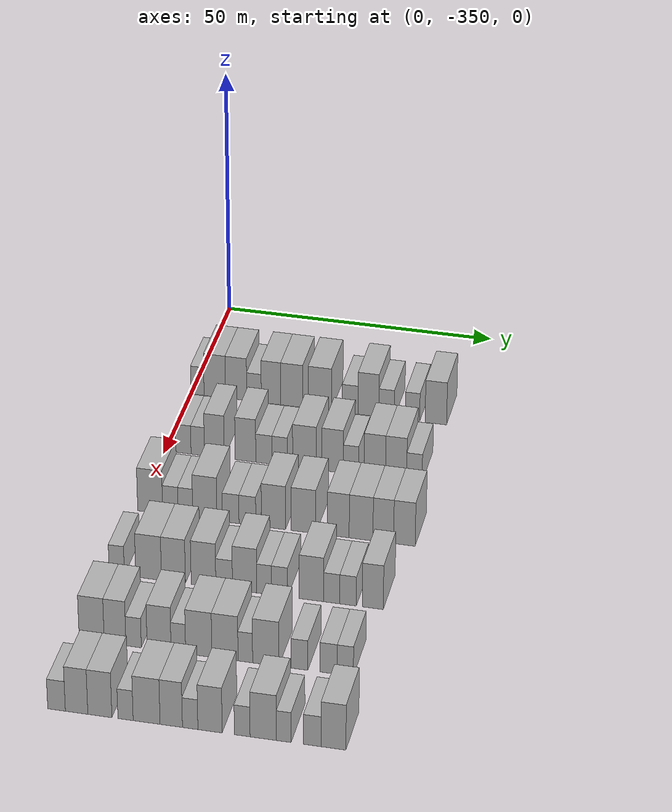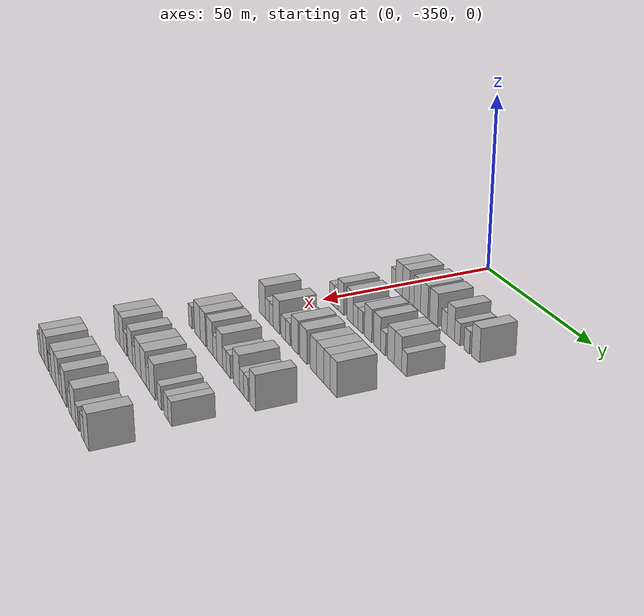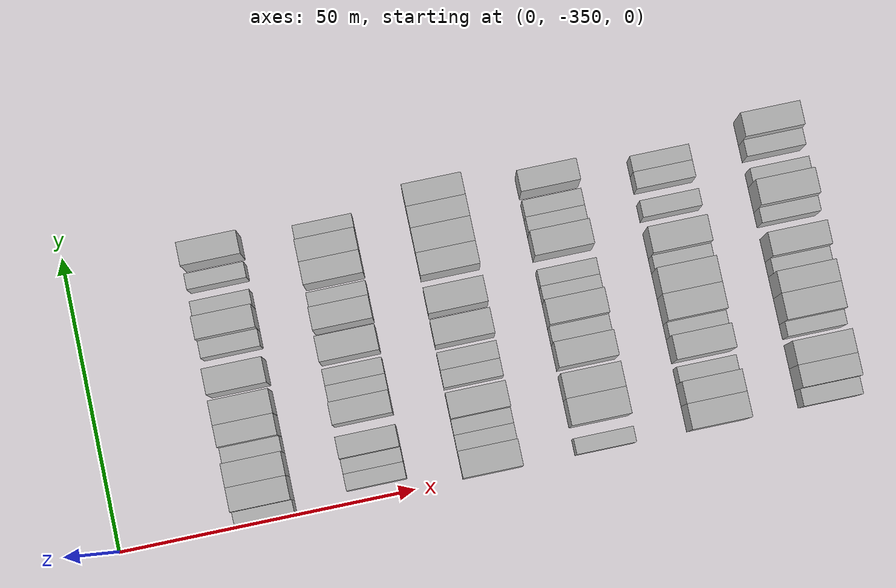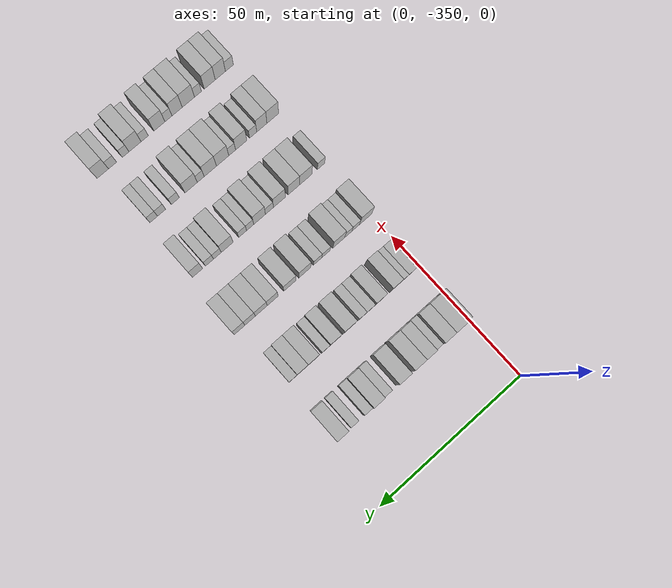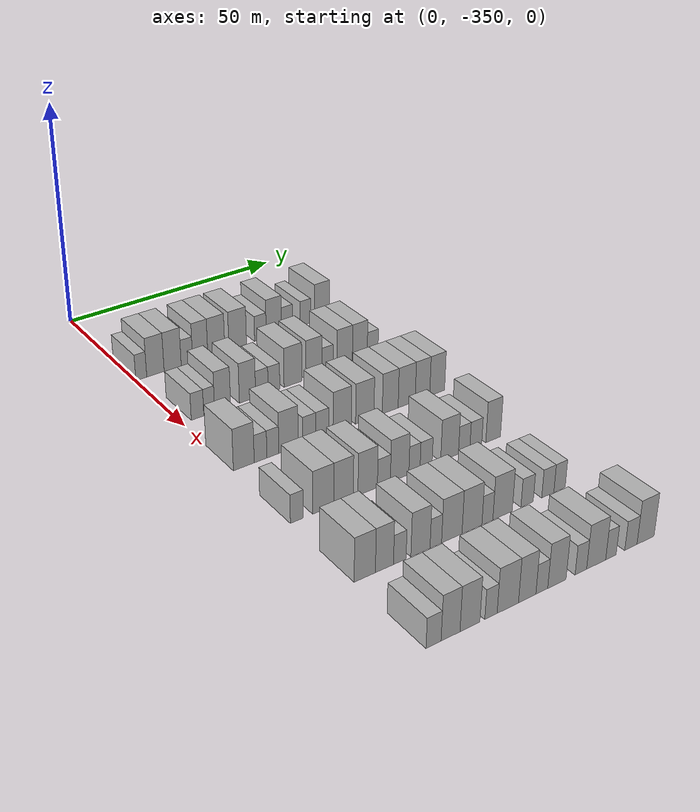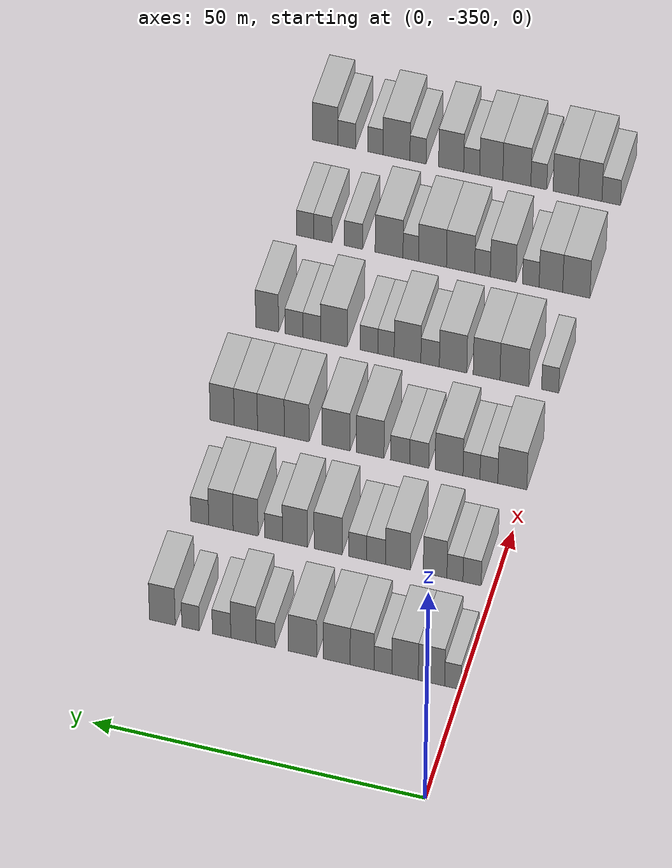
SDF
<sdf version="1.6">
 <world name="default">
  <model name="building_1">
   <static>1</static>
   <pose>25.0000 -348.7629 0 0.000000 0.000000 0.000000</pose>
   <link name="link">
    <pose>0 0 3.00 0 0 0</pose>
    <collision name="collision"><geometry><box><size>10.0000 2.4742 6.0000</size></box></geometry></collision>
    <visual name="visual">
     <cast_shadows>0</cast_shadows>
     <geometry><box><size>10.0000 2.4742 6.0000</size></box></geometry>
     <material>
      <script>
       <uri>model://HANNAS_wall/materials/scripts</uri>
       <uri>model://HANNAS_wall/materials/textures</uri>
       <name>vrc/HANNAS_wall</name>
      </script>
     </material>
    </visual>
   </link>
  </model>
  <model name="building_2">
   <static>1</static>
   <pose>25.0000 -345.5287 0 0.000000 0.000000 0.000000</pose>
   <link name="link">
    <pose>0 0 4.50 0 0 0</pose>
    <collision name="collision"><geometry><box><size>10.0000 3.9941 9.0000</size></box></geometry></collision>
    <visual name="visual">
     <cast_shadows>0</cast_shadows>
     <geometry><box><size>10.0000 3.9941 9.0000</size></box></geometry>
     <material>
      <script>
       <uri>model://HANNAS_wall/materials/scripts</uri>
       <uri>model://HANNAS_wall/materials/textures</uri>
       <name>vrc/HANNAS_wall</name>
      </script>
     </material>
    </visual>
   </link>
  </model>
  <model name="building_3">
   <static>1</static>
   <pose>25.0000 -341.5436 0 0.000000 0.000000 0.000000</pose>
   <link name="link">
    <pose>0 0 4.50 0 0 0</pose>
    <collision name="collision"><geometry><box><size>10.0000 3.9762 9.0000</size></box></geometry></collision>
    <visual name="visual">
     <cast_shadows>0</cast_shadows>
     <geometry><box><size>10.0000 3.9762 9.0000</size></box></geometry>
     <material>
      <script>
       <uri>model://HANNAS_wall/materials/scripts</uri>
       <uri>model://HANNAS_wall/materials/textures</uri>
       <name>vrc/HANNAS_wall</name>
      </script>
     </material>
    </visual>
   </link>
  </model>
  <model name="building_4">
   <static>1</static>
   <pose>25.0000 -338.1985 0 0.000000 0.000000 0.000000</pose>
   <link name="link">
    <pose>0 0 3.00 0 0 0</pose>
    <collision name="collision"><geometry><box><size>10.0000 2.7139 6.0000</size></box></geometry></collision>
    <visual name="visual">
     <cast_shadows>0</cast_shadows>
     <geometry><box><size>10.0000 2.7139 6.0000</size></box></geometry>
     <material>
      <script>
       <uri>model://HANNAS_wall/materials/scripts</uri>
       <uri>model://HANNAS_wall/materials/textures</uri>
       <name>vrc/HANNAS_wall</name>
      </script>
     </material>
    </visual>
   </link>
  </model>
  <model name="building_5">
   <static>1</static>
   <pose>25.0000 -335.0386 0 0.000000 0.000000 0.000000</pose>
   <link name="link">
    <pose>0 0 4.50 0 0 0</pose>
    <collision name="collision"><geometry><box><size>10.0000 3.6061 9.0000</size></box></geometry></collision>
    <visual name="visual">
     <cast_shadows>0</cast_shadows>
     <geometry><box><size>10.0000 3.6061 9.0000</size></box></geometry>
     <material>
      <script>
       <uri>model://HANNAS_wall/materials/scripts</uri>
       <uri>model://HANNAS_wall/materials/textures</uri>
       <name>vrc/HANNAS_wall</name>
      </script>
     </material>
    </visual>
   </link>
  </model>
  <model name="building_6">
   <static>1</static>
   <pose>25.0000 -331.1882 0 0.000000 0.000000 0.000000</pose>
   <link name="link">
    <pose>0 0 4.50 0 0 0</pose>
    <collision name="collision"><geometry><box><size>10.0000 4.0946 9.0000</size></box></geometry></collision>
    <visual name="visual">
     <cast_shadows>0</cast_shadows>
     <geometry><box><size>10.0000 4.0946 9.0000</size></box></geometry>
     <material>
      <script>
       <uri>model://HANNAS_wall/materials/scripts</uri>
       <uri>model://HANNAS_wall/materials/textures</uri>
       <name>vrc/HANNAS_wall</name>
      </script>
     </material>
    </visual>
   </link>
  </model>
  <model name="building_7">
   <static>1</static>
   <pose>25.0000 -325.9881 0 0.000000 0.000000 0.000000</pose>
   <link name="link">
    <pose>0 0 4.50 0 0 0</pose>
    <collision name="collision"><geometry><box><size>10.0000 4.3057 9.0000</size></box></geometry></collision>
    <visual name="visual">
     <cast_shadows>0</cast_shadows>
     <geometry><box><size>10.0000 4.3057 9.0000</size></box></geometry>
     <material>
      <script>
       <uri>model://HANNAS_wall/materials/scripts</uri>
       <uri>model://HANNAS_wall/materials/textures</uri>
       <name>vrc/HANNAS_wall</name>
      </script>
     </material>
    </visual>
   </link>
  </model>
  <model name="building_8">
   <static>1</static>
   <pose>25.0000 -320.3770 0 0.000000 0.000000 0.000000</pose>
   <link name="link">
    <pose>0 0 3.00 0 0 0</pose>
    <collision name="collision"><geometry><box><size>10.0000 2.9164 6.0000</size></box></geometry></collision>
    <visual name="visual">
     <cast_shadows>0</cast_shadows>
     <geometry><box><size>10.0000 2.9164 6.0000</size></box></geometry>
     <material>
      <script>
       <uri>model://HANNAS_wall/materials/scripts</uri>
       <uri>model://HANNAS_wall/materials/textures</uri>
       <name>vrc/HANNAS_wall</name>
      </script>
     </material>
    </visual>
   </link>
  </model>
  <model name="building_9">
   <static>1</static>
   <pose>25.0000 -316.9944 0 0.000000 0.000000 0.000000</pose>
   <link name="link">
    <pose>0 0 4.50 0 0 0</pose>
    <collision name="collision"><geometry><box><size>10.0000 3.8488 9.0000</size></box></geometry></collision>
    <visual name="visual">
     <cast_shadows>0</cast_shadows>
     <geometry><box><size>10.0000 3.8488 9.0000</size></box></geometry>
     <material>
      <script>
       <uri>model://HANNAS_wall/materials/scripts</uri>
       <uri>model://HANNAS_wall/materials/textures</uri>
       <name>vrc/HANNAS_wall</name>
      </script>
     </material>
    </visual>
   </link>
  </model>
  <model name="building_10">
   <static>1</static>
   <pose>25.0000 -313.6656 0 0.000000 0.000000 0.000000</pose>
   <link name="link">
    <pose>0 0 3.00 0 0 0</pose>
    <collision name="collision"><geometry><box><size>10.0000 2.8087 6.0000</size></box></geometry></collision>
    <visual name="visual">
     <cast_shadows>0</cast_shadows>
     <geometry><box><size>10.0000 2.8087 6.0000</size></box></geometry>
     <material>
      <script>
       <uri>model://HANNAS_wall/materials/scripts</uri>
       <uri>model://HANNAS_wall/materials/textures</uri>
       <name>vrc/HANNAS_wall</name>
      </script>
     </material>
    </visual>
   </link>
  </model>
  <model name="building_11">
   <static>1</static>
   <pose>25.0000 -308.9259 0 0.000000 0.000000 0.000000</pose>
   <link name="link">
    <pose>0 0 3.00 0 0 0</pose>
    <collision name="collision"><geometry><box><size>10.0000 2.6708 6.0000</size></box></geometry></collision>
    <visual name="visual">
     <cast_shadows>0</cast_shadows>
     <geometry><box><size>10.0000 2.6708 6.0000</size></box></geometry>
     <material>
      <script>
       <uri>model://HANNAS_wall/materials/scripts</uri>
       <uri>model://HANNAS_wall/materials/textures</uri>
       <name>vrc/HANNAS_wall</name>
      </script>
     </material>
    </visual>
   </link>
  </model>
  <model name="building_12">
   <static>1</static>
   <pose>25.0000 -304.6251 0 0.000000 0.000000 0.000000</pose>
   <link name="link">
    <pose>0 0 4.50 0 0 0</pose>
    <collision name="collision"><geometry><box><size>10.0000 3.9308 9.0000</size></box></geometry></collision>
    <visual name="visual">
     <cast_shadows>0</cast_shadows>
     <geometry><box><size>10.0000 3.9308 9.0000</size></box></geometry>
     <material>
      <script>
       <uri>model://HANNAS_wall/materials/scripts</uri>
       <uri>model://HANNAS_wall/materials/textures</uri>
       <name>vrc/HANNAS_wall</name>
      </script>
     </material>
    </visual>
   </link>
  </model>
  <model name="building_169">
   <static>1</static>
   <pose>44.0000 -346.6070 0 0.000000 0.000000 0.000000</pose>
   <link name="link">
    <pose>0 0 3.00 0 0 0</pose>
    <collision name="collision"><geometry><box><size>10.0000 2.7861 6.0000</size></box></geometry></collision>
    <visual name="visual">
     <cast_shadows>0</cast_shadows>
     <geometry><box><size>10.0000 2.7861 6.0000</size></box></geometry>
     <material>
      <script>
       <uri>model://HANNAS_wall/materials/scripts</uri>
       <uri>model://HANNAS_wall/materials/textures</uri>
       <name>vrc/HANNAS_wall</name>
      </script>
     </material>
    </visual>
   </link>
  </model>
  <model name="building_170">
   <static>1</static>
   <pose>44.0000 -343.9913 0 0.000000 0.000000 0.000000</pose>
   <link name="link">
    <pose>0 0 3.00 0 0 0</pose>
    <collision name="collision"><geometry><box><size>10.0000 2.4452 6.0000</size></box></geometry></collision>
    <visual name="visual">
     <cast_shadows>0</cast_shadows>
     <geometry><box><size>10.0000 2.4452 6.0000</size></box></geometry>
     <material>
      <script>
       <uri>model://HANNAS_wall/materials/scripts</uri>
       <uri>model://HANNAS_wall/materials/textures</uri>
       <name>vrc/HANNAS_wall</name>
      </script>
     </material>
    </visual>
   </link>
  </model>
  <model name="building_171">
   <static>1</static>
   <pose>44.0000 -340.9624 0 0.000000 0.000000 0.000000</pose>
   <link name="link">
    <pose>0 0 4.50 0 0 0</pose>
    <collision name="collision"><geometry><box><size>10.0000 3.6128 9.0000</size></box></geometry></collision>
    <visual name="visual">
     <cast_shadows>0</cast_shadows>
     <geometry><box><size>10.0000 3.6128 9.0000</size></box></geometry>
     <material>
      <script>
       <uri>model://HANNAS_wall/materials/scripts</uri>
       <uri>model://HANNAS_wall/materials/textures</uri>
       <name>vrc/HANNAS_wall</name>
      </script>
     </material>
    </visual>
   </link>
  </model>
  <model name="building_172">
   <static>1</static>
   <pose>44.0000 -335.2778 0 0.000000 0.000000 0.000000</pose>
   <link name="link">
    <pose>0 0 4.50 0 0 0</pose>
    <collision name="collision"><geometry><box><size>10.0000 3.7563 9.0000</size></box></geometry></collision>
    <visual name="visual">
     <cast_shadows>0</cast_shadows>
     <geometry><box><size>10.0000 3.7563 9.0000</size></box></geometry>
     <material>
      <script>
       <uri>model://HANNAS_wall/materials/scripts</uri>
       <uri>model://HANNAS_wall/materials/textures</uri>
       <name>vrc/HANNAS_wall</name>
      </script>
     </material>
    </visual>
   </link>
  </model>
  <model name="building_173">
   <static>1</static>
   <pose>44.0000 -331.9364 0 0.000000 0.000000 0.000000</pose>
   <link name="link">
    <pose>0 0 3.00 0 0 0</pose>
    <collision name="collision"><geometry><box><size>10.0000 2.9266 6.0000</size></box></geometry></collision>
    <visual name="visual">
     <cast_shadows>0</cast_shadows>
     <geometry><box><size>10.0000 2.9266 6.0000</size></box></geometry>
     <material>
      <script>
       <uri>model://HANNAS_wall/materials/scripts</uri>
       <uri>model://HANNAS_wall/materials/textures</uri>
       <name>vrc/HANNAS_wall</name>
      </script>
     </material>
    </visual>
   </link>
  </model>
  <model name="building_174">
   <static>1</static>
   <pose>44.0000 -329.0938 0 0.000000 0.000000 0.000000</pose>
   <link name="link">
    <pose>0 0 3.00 0 0 0</pose>
    <collision name="collision"><geometry><box><size>10.0000 2.7586 6.0000</size></box></geometry></collision>
    <visual name="visual">
     <cast_shadows>0</cast_shadows>
     <geometry><box><size>10.0000 2.7586 6.0000</size></box></geometry>
     <material>
      <script>
       <uri>model://HANNAS_wall/materials/scripts</uri>
       <uri>model://HANNAS_wall/materials/textures</uri>
       <name>vrc/HANNAS_wall</name>
      </script>
     </material>
    </visual>
   </link>
  </model>
  <model name="building_175">
   <static>1</static>
   <pose>44.0000 -324.5658 0 0.000000 0.000000 0.000000</pose>
   <link name="link">
    <pose>0 0 4.50 0 0 0</pose>
    <collision name="collision"><geometry><box><size>10.0000 4.2974 9.0000</size></box></geometry></collision>
    <visual name="visual">
     <cast_shadows>0</cast_shadows>
     <geometry><box><size>10.0000 4.2974 9.0000</size></box></geometry>
     <material>
      <script>
       <uri>model://HANNAS_wall/materials/scripts</uri>
       <uri>model://HANNAS_wall/materials/textures</uri>
       <name>vrc/HANNAS_wall</name>
      </script>
     </material>
    </visual>
   </link>
  </model>
  <model name="building_176">
   <static>1</static>
   <pose>44.0000 -319.4846 0 0.000000 0.000000 0.000000</pose>
   <link name="link">
    <pose>0 0 4.50 0 0 0</pose>
    <collision name="collision"><geometry><box><size>10.0000 3.8649 9.0000</size></box></geometry></collision>
    <visual name="visual">
     <cast_shadows>0</cast_shadows>
     <geometry><box><size>10.0000 3.8649 9.0000</size></box></geometry>
     <material>
      <script>
       <uri>model://HANNAS_wall/materials/scripts</uri>
       <uri>model://HANNAS_wall/materials/textures</uri>
       <name>vrc/HANNAS_wall</name>
      </script>
     </material>
    </visual>
   </link>
  </model>
  <model name="building_177">
   <static>1</static>
   <pose>44.0000 -316.1811 0 0.000000 0.000000 0.000000</pose>
   <link name="link">
    <pose>0 0 3.00 0 0 0</pose>
    <collision name="collision"><geometry><box><size>10.0000 2.7421 6.0000</size></box></geometry></collision>
    <visual name="visual">
     <cast_shadows>0</cast_shadows>
     <geometry><box><size>10.0000 2.7421 6.0000</size></box></geometry>
     <material>
      <script>
       <uri>model://HANNAS_wall/materials/scripts</uri>
       <uri>model://HANNAS_wall/materials/textures</uri>
       <name>vrc/HANNAS_wall</name>
      </script>
     </material>
    </visual>
   </link>
  </model>
  <model name="building_178">
   <static>1</static>
   <pose>44.0000 -311.8851 0 0.000000 0.000000 0.000000</pose>
   <link name="link">
    <pose>0 0 4.50 0 0 0</pose>
    <collision name="collision"><geometry><box><size>10.0000 3.8500 9.0000</size></box></geometry></collision>
    <visual name="visual">
     <cast_shadows>0</cast_shadows>
     <geometry><box><size>10.0000 3.8500 9.0000</size></box></geometry>
     <material>
      <script>
       <uri>model://HANNAS_wall/materials/scripts</uri>
       <uri>model://HANNAS_wall/materials/textures</uri>
       <name>vrc/HANNAS_wall</name>
      </script>
     </material>
    </visual>
   </link>
  </model>
  <model name="building_179">
   <static>1</static>
   <pose>44.0000 -308.0728 0 0.000000 0.000000 0.000000</pose>
   <link name="link">
    <pose>0 0 4.50 0 0 0</pose>
    <collision name="collision"><geometry><box><size>10.0000 3.7745 9.0000</size></box></geometry></collision>
    <visual name="visual">
     <cast_shadows>0</cast_shadows>
     <geometry><box><size>10.0000 3.7745 9.0000</size></box></geometry>
     <material>
      <script>
       <uri>model://HANNAS_wall/materials/scripts</uri>
       <uri>model://HANNAS_wall/materials/textures</uri>
       <name>vrc/HANNAS_wall</name>
      </script>
     </material>
    </visual>
   </link>
  </model>
  <model name="building_180">
   <static>1</static>
   <pose>44.0000 -304.8033 0 0.000000 0.000000 0.000000</pose>
   <link name="link">
    <pose>0 0 3.00 0 0 0</pose>
    <collision name="collision"><geometry><box><size>10.0000 2.7644 6.0000</size></box></geometry></collision>
    <visual name="visual">
     <cast_shadows>0</cast_shadows>
     <geometry><box><size>10.0000 2.7644 6.0000</size></box></geometry>
     <material>
      <script>
       <uri>model://HANNAS_wall/materials/scripts</uri>
       <uri>model://HANNAS_wall/materials/textures</uri>
       <name>vrc/HANNAS_wall</name>
      </script>
     </material>
    </visual>
   </link>
  </model>
  <model name="building_331">
   <static>1</static>
   <pose>63.0000 -347.7648 0 0.000000 0.000000 0.000000</pose>
   <link name="link">
    <pose>0 0 4.50 0 0 0</pose>
    <collision name="collision"><geometry><box><size>10.0000 4.4703 9.0000</size></box></geometry></collision>
    <visual name="visual">
     <cast_shadows>0</cast_shadows>
     <geometry><box><size>10.0000 4.4703 9.0000</size></box></geometry>
     <material>
      <script>
       <uri>model://HANNAS_wall/materials/scripts</uri>
       <uri>model://HANNAS_wall/materials/textures</uri>
       <name>vrc/HANNAS_wall</name>
      </script>
     </material>
    </visual>
   </link>
  </model>
  <model name="building_332">
   <static>1</static>
   <pose>63.0000 -344.1526 0 0.000000 0.000000 0.000000</pose>
   <link name="link">
    <pose>0 0 3.00 0 0 0</pose>
    <collision name="collision"><geometry><box><size>10.0000 2.7542 6.0000</size></box></geometry></collision>
    <visual name="visual">
     <cast_shadows>0</cast_shadows>
     <geometry><box><size>10.0000 2.7542 6.0000</size></box></geometry>
     <material>
      <script>
       <uri>model://HANNAS_wall/materials/scripts</uri>
       <uri>model://HANNAS_wall/materials/textures</uri>
       <name>vrc/HANNAS_wall</name>
      </script>
     </material>
    </visual>
   </link>
  </model>
  <model name="building_333">
   <static>1</static>
   <pose>63.0000 -341.4654 0 0.000000 0.000000 0.000000</pose>
   <link name="link">
    <pose>0 0 3.00 0 0 0</pose>
    <collision name="collision"><geometry><box><size>10.0000 2.6201 6.0000</size></box></geometry></collision>
    <visual name="visual">
     <cast_shadows>0</cast_shadows>
     <geometry><box><size>10.0000 2.6201 6.0000</size></box></geometry>
     <material>
      <script>
       <uri>model://HANNAS_wall/materials/scripts</uri>
       <uri>model://HANNAS_wall/materials/textures</uri>
       <name>vrc/HANNAS_wall</name>
      </script>
     </material>
    </visual>
   </link>
  </model>
  <model name="building_334">
   <static>1</static>
   <pose>63.0000 -338.0038 0 0.000000 0.000000 0.000000</pose>
   <link name="link">
    <pose>0 0 4.50 0 0 0</pose>
    <collision name="collision"><geometry><box><size>10.0000 4.3030 9.0000</size></box></geometry></collision>
    <visual name="visual">
     <cast_shadows>0</cast_shadows>
     <geometry><box><size>10.0000 4.3030 9.0000</size></box></geometry>
     <material>
      <script>
       <uri>model://HANNAS_wall/materials/scripts</uri>
       <uri>model://HANNAS_wall/materials/textures</uri>
       <name>vrc/HANNAS_wall</name>
      </script>
     </material>
    </visual>
   </link>
  </model>
  <model name="building_335">
   <static>1</static>
   <pose>63.0000 -333.3852 0 0.000000 0.000000 0.000000</pose>
   <link name="link">
    <pose>0 0 3.00 0 0 0</pose>
    <collision name="collision"><geometry><box><size>10.0000 2.9342 6.0000</size></box></geometry></collision>
    <visual name="visual">
     <cast_shadows>0</cast_shadows>
     <geometry><box><size>10.0000 2.9342 6.0000</size></box></geometry>
     <material>
      <script>
       <uri>model://HANNAS_wall/materials/scripts</uri>
       <uri>model://HANNAS_wall/materials/textures</uri>
       <name>vrc/HANNAS_wall</name>
      </script>
     </material>
    </visual>
   </link>
  </model>
  <model name="building_336">
   <static>1</static>
   <pose>63.0000 -330.4274 0 0.000000 0.000000 0.000000</pose>
   <link name="link">
    <pose>0 0 3.00 0 0 0</pose>
    <collision name="collision"><geometry><box><size>10.0000 2.9812 6.0000</size></box></geometry></collision>
    <visual name="visual">
     <cast_shadows>0</cast_shadows>
     <geometry><box><size>10.0000 2.9812 6.0000</size></box></geometry>
     <material>
      <script>
       <uri>model://HANNAS_wall/materials/scripts</uri>
       <uri>model://HANNAS_wall/materials/textures</uri>
       <name>vrc/HANNAS_wall</name>
      </script>
     </material>
    </visual>
   </link>
  </model>
  <model name="building_337">
   <static>1</static>
   <pose>63.0000 -325.8070 0 0.000000 0.000000 0.000000</pose>
   <link name="link">
    <pose>0 0 4.50 0 0 0</pose>
    <collision name="collision"><geometry><box><size>10.0000 4.2597 9.0000</size></box></geometry></collision>
    <visual name="visual">
     <cast_shadows>0</cast_shadows>
     <geometry><box><size>10.0000 4.2597 9.0000</size></box></geometry>
     <material>
      <script>
       <uri>model://HANNAS_wall/materials/scripts</uri>
       <uri>model://HANNAS_wall/materials/textures</uri>
       <name>vrc/HANNAS_wall</name>
      </script>
     </material>
    </visual>
   </link>
  </model>
  <model name="building_338">
   <static>1</static>
   <pose>63.0000 -320.4951 0 0.000000 0.000000 0.000000</pose>
   <link name="link">
    <pose>0 0 4.50 0 0 0</pose>
    <collision name="collision"><geometry><box><size>10.0000 4.3640 9.0000</size></box></geometry></collision>
    <visual name="visual">
     <cast_shadows>0</cast_shadows>
     <geometry><box><size>10.0000 4.3640 9.0000</size></box></geometry>
     <material>
      <script>
       <uri>model://HANNAS_wall/materials/scripts</uri>
       <uri>model://HANNAS_wall/materials/textures</uri>
       <name>vrc/HANNAS_wall</name>
      </script>
     </material>
    </visual>
   </link>
  </model>
  <model name="building_339">
   <static>1</static>
   <pose>63.0000 -314.3894 0 0.000000 0.000000 0.000000</pose>
   <link name="link">
    <pose>0 0 4.50 0 0 0</pose>
    <collision name="collision"><geometry><box><size>10.0000 3.8474 9.0000</size></box></geometry></collision>
    <visual name="visual">
     <cast_shadows>0</cast_shadows>
     <geometry><box><size>10.0000 3.8474 9.0000</size></box></geometry>
     <material>
      <script>
       <uri>model://HANNAS_wall/materials/scripts</uri>
       <uri>model://HANNAS_wall/materials/textures</uri>
       <name>vrc/HANNAS_wall</name>
      </script>
     </material>
    </visual>
   </link>
  </model>
  <model name="building_340">
   <static>1</static>
   <pose>63.0000 -310.3753 0 0.000000 0.000000 0.000000</pose>
   <link name="link">
    <pose>0 0 4.50 0 0 0</pose>
    <collision name="collision"><geometry><box><size>10.0000 4.1808 9.0000</size></box></geometry></collision>
    <visual name="visual">
     <cast_shadows>0</cast_shadows>
     <geometry><box><size>10.0000 4.1808 9.0000</size></box></geometry>
     <material>
      <script>
       <uri>model://HANNAS_wall/materials/scripts</uri>
       <uri>model://HANNAS_wall/materials/textures</uri>
       <name>vrc/HANNAS_wall</name>
      </script>
     </material>
    </visual>
   </link>
  </model>
  <model name="building_341">
   <static>1</static>
   <pose>63.0000 -306.4700 0 0.000000 0.000000 0.000000</pose>
   <link name="link">
    <pose>0 0 4.50 0 0 0</pose>
    <collision name="collision"><geometry><box><size>10.0000 3.6298 9.0000</size></box></geometry></collision>
    <visual name="visual">
     <cast_shadows>0</cast_shadows>
     <geometry><box><size>10.0000 3.6298 9.0000</size></box></geometry>
     <material>
      <script>
       <uri>model://HANNAS_wall/materials/scripts</uri>
       <uri>model://HANNAS_wall/materials/textures</uri>
       <name>vrc/HANNAS_wall</name>
      </script>
     </material>
    </visual>
   </link>
  </model>
  <model name="building_342">
   <static>1</static>
   <pose>63.0000 -302.7753 0 0.000000 0.000000 0.000000</pose>
   <link name="link">
    <pose>0 0 4.50 0 0 0</pose>
    <collision name="collision"><geometry><box><size>10.0000 3.7595 9.0000</size></box></geometry></collision>
    <visual name="visual">
     <cast_shadows>0</cast_shadows>
     <geometry><box><size>10.0000 3.7595 9.0000</size></box></geometry>
     <material>
      <script>
       <uri>model://HANNAS_wall/materials/scripts</uri>
       <uri>model://HANNAS_wall/materials/textures</uri>
       <name>vrc/HANNAS_wall</name>
      </script>
     </material>
    </visual>
   </link>
  </model>
  <model name="building_504">
   <static>1</static>
   <pose>82.0000 -348.6699 0 0.000000 0.000000 0.000000</pose>
   <link name="link">
    <pose>0 0 3.00 0 0 0</pose>
    <collision name="collision"><geometry><box><size>10.0000 2.6602 6.0000</size></box></geometry></collision>
    <visual name="visual">
     <cast_shadows>0</cast_shadows>
     <geometry><box><size>10.0000 2.6602 6.0000</size></box></geometry>
     <material>
      <script>
       <uri>model://HANNAS_wall/materials/scripts</uri>
       <uri>model://HANNAS_wall/materials/textures</uri>
       <name>vrc/HANNAS_wall</name>
      </script>
     </material>
    </visual>
   </link>
  </model>
  <model name="building_505">
   <static>1</static>
   <pose>82.0000 -343.0952 0 0.000000 0.000000 0.000000</pose>
   <link name="link">
    <pose>0 0 4.50 0 0 0</pose>
    <collision name="collision"><geometry><box><size>10.0000 4.4891 9.0000</size></box></geometry></collision>
    <visual name="visual">
     <cast_shadows>0</cast_shadows>
     <geometry><box><size>10.0000 4.4891 9.0000</size></box></geometry>
     <material>
      <script>
       <uri>model://HANNAS_wall/materials/scripts</uri>
       <uri>model://HANNAS_wall/materials/textures</uri>
       <name>vrc/HANNAS_wall</name>
      </script>
     </material>
    </visual>
   </link>
  </model>
  <model name="building_506">
   <static>1</static>
   <pose>82.0000 -338.7643 0 0.000000 0.000000 0.000000</pose>
   <link name="link">
    <pose>0 0 4.50 0 0 0</pose>
    <collision name="collision"><geometry><box><size>10.0000 4.1728 9.0000</size></box></geometry></collision>
    <visual name="visual">
     <cast_shadows>0</cast_shadows>
     <geometry><box><size>10.0000 4.1728 9.0000</size></box></geometry>
     <material>
      <script>
       <uri>model://HANNAS_wall/materials/scripts</uri>
       <uri>model://HANNAS_wall/materials/textures</uri>
       <name>vrc/HANNAS_wall</name>
      </script>
     </material>
    </visual>
   </link>
  </model>
  <model name="building_507">
   <static>1</static>
   <pose>82.0000 -333.5372 0 0.000000 0.000000 0.000000</pose>
   <link name="link">
    <pose>0 0 4.50 0 0 0</pose>
    <collision name="collision"><geometry><box><size>10.0000 4.2813 9.0000</size></box></geometry></collision>
    <visual name="visual">
     <cast_shadows>0</cast_shadows>
     <geometry><box><size>10.0000 4.2813 9.0000</size></box></geometry>
     <material>
      <script>
       <uri>model://HANNAS_wall/materials/scripts</uri>
       <uri>model://HANNAS_wall/materials/textures</uri>
       <name>vrc/HANNAS_wall</name>
      </script>
     </material>
    </visual>
   </link>
  </model>
  <model name="building_508">
   <static>1</static>
   <pose>82.0000 -329.9532 0 0.000000 0.000000 0.000000</pose>
   <link name="link">
    <pose>0 0 3.00 0 0 0</pose>
    <collision name="collision"><geometry><box><size>10.0000 2.8868 6.0000</size></box></geometry></collision>
    <visual name="visual">
     <cast_shadows>0</cast_shadows>
     <geometry><box><size>10.0000 2.8868 6.0000</size></box></geometry>
     <material>
      <script>
       <uri>model://HANNAS_wall/materials/scripts</uri>
       <uri>model://HANNAS_wall/materials/textures</uri>
       <name>vrc/HANNAS_wall</name>
      </script>
     </material>
    </visual>
   </link>
  </model>
  <model name="building_509">
   <static>1</static>
   <pose>82.0000 -326.4195 0 0.000000 0.000000 0.000000</pose>
   <link name="link">
    <pose>0 0 4.50 0 0 0</pose>
    <collision name="collision"><geometry><box><size>10.0000 4.1806 9.0000</size></box></geometry></collision>
    <visual name="visual">
     <cast_shadows>0</cast_shadows>
     <geometry><box><size>10.0000 4.1806 9.0000</size></box></geometry>
     <material>
      <script>
       <uri>model://HANNAS_wall/materials/scripts</uri>
       <uri>model://HANNAS_wall/materials/textures</uri>
       <name>vrc/HANNAS_wall</name>
      </script>
     </material>
    </visual>
   </link>
  </model>
  <model name="building_510">
   <static>1</static>
   <pose>82.0000 -323.0485 0 0.000000 0.000000 0.000000</pose>
   <link name="link">
    <pose>0 0 3.00 0 0 0</pose>
    <collision name="collision"><geometry><box><size>10.0000 2.5615 6.0000</size></box></geometry></collision>
    <visual name="visual">
     <cast_shadows>0</cast_shadows>
     <geometry><box><size>10.0000 2.5615 6.0000</size></box></geometry>
     <material>
      <script>
       <uri>model://HANNAS_wall/materials/scripts</uri>
       <uri>model://HANNAS_wall/materials/textures</uri>
       <name>vrc/HANNAS_wall</name>
      </script>
     </material>
    </visual>
   </link>
  </model>
  <model name="building_511">
   <static>1</static>
   <pose>82.0000 -320.3709 0 0.000000 0.000000 0.000000</pose>
   <link name="link">
    <pose>0 0 3.00 0 0 0</pose>
    <collision name="collision"><geometry><box><size>10.0000 2.7937 6.0000</size></box></geometry></collision>
    <visual name="visual">
     <cast_shadows>0</cast_shadows>
     <geometry><box><size>10.0000 2.7937 6.0000</size></box></geometry>
     <material>
      <script>
       <uri>model://HANNAS_wall/materials/scripts</uri>
       <uri>model://HANNAS_wall/materials/textures</uri>
       <name>vrc/HANNAS_wall</name>
      </script>
     </material>
    </visual>
   </link>
  </model>
  <model name="building_512">
   <static>1</static>
   <pose>82.0000 -314.8719 0 0.000000 0.000000 0.000000</pose>
   <link name="link">
    <pose>0 0 4.50 0 0 0</pose>
    <collision name="collision"><geometry><box><size>10.0000 4.2044 9.0000</size></box></geometry></collision>
    <visual name="visual">
     <cast_shadows>0</cast_shadows>
     <geometry><box><size>10.0000 4.2044 9.0000</size></box></geometry>
     <material>
      <script>
       <uri>model://HANNAS_wall/materials/scripts</uri>
       <uri>model://HANNAS_wall/materials/textures</uri>
       <name>vrc/HANNAS_wall</name>
      </script>
     </material>
    </visual>
   </link>
  </model>
  <model name="building_513">
   <static>1</static>
   <pose>82.0000 -311.4018 0 0.000000 0.000000 0.000000</pose>
   <link name="link">
    <pose>0 0 3.00 0 0 0</pose>
    <collision name="collision"><geometry><box><size>10.0000 2.7357 6.0000</size></box></geometry></collision>
    <visual name="visual">
     <cast_shadows>0</cast_shadows>
     <geometry><box><size>10.0000 2.7357 6.0000</size></box></geometry>
     <material>
      <script>
       <uri>model://HANNAS_wall/materials/scripts</uri>
       <uri>model://HANNAS_wall/materials/textures</uri>
       <name>vrc/HANNAS_wall</name>
      </script>
     </material>
    </visual>
   </link>
  </model>
  <model name="building_514">
   <static>1</static>
   <pose>82.0000 -308.6063 0 0.000000 0.000000 0.000000</pose>
   <link name="link">
    <pose>0 0 3.00 0 0 0</pose>
    <collision name="collision"><geometry><box><size>10.0000 2.8554 6.0000</size></box></geometry></collision>
    <visual name="visual">
     <cast_shadows>0</cast_shadows>
     <geometry><box><size>10.0000 2.8554 6.0000</size></box></geometry>
     <material>
      <script>
       <uri>model://HANNAS_wall/materials/scripts</uri>
       <uri>model://HANNAS_wall/materials/textures</uri>
       <name>vrc/HANNAS_wall</name>
      </script>
     </material>
    </visual>
   </link>
  </model>
  <model name="building_515">
   <static>1</static>
   <pose>82.0000 -304.3753 0 0.000000 0.000000 0.000000</pose>
   <link name="link">
    <pose>0 0 4.50 0 0 0</pose>
    <collision name="collision"><geometry><box><size>10.0000 3.6064 9.0000</size></box></geometry></collision>
    <visual name="visual">
     <cast_shadows>0</cast_shadows>
     <geometry><box><size>10.0000 3.6064 9.0000</size></box></geometry>
     <material>
      <script>
       <uri>model://HANNAS_wall/materials/scripts</uri>
       <uri>model://HANNAS_wall/materials/textures</uri>
       <name>vrc/HANNAS_wall</name>
      </script>
     </material>
    </visual>
   </link>
  </model>
  <model name="building_677">
   <static>1</static>
   <pose>101.0000 -347.8574 0 0.000000 0.000000 0.000000</pose>
   <link name="link">
    <pose>0 0 4.50 0 0 0</pose>
    <collision name="collision"><geometry><box><size>10.0000 4.2853 9.0000</size></box></geometry></collision>
    <visual name="visual">
     <cast_shadows>0</cast_shadows>
     <geometry><box><size>10.0000 4.2853 9.0000</size></box></geometry>
     <material>
      <script>
       <uri>model://HANNAS_wall/materials/scripts</uri>
       <uri>model://HANNAS_wall/materials/textures</uri>
       <name>vrc/HANNAS_wall</name>
      </script>
     </material>
    </visual>
   </link>
  </model>
  <model name="building_678">
   <static>1</static>
   <pose>101.0000 -343.8634 0 0.000000 0.000000 0.000000</pose>
   <link name="link">
    <pose>0 0 4.50 0 0 0</pose>
    <collision name="collision"><geometry><box><size>10.0000 3.7026 9.0000</size></box></geometry></collision>
    <visual name="visual">
     <cast_shadows>0</cast_shadows>
     <geometry><box><size>10.0000 3.7026 9.0000</size></box></geometry>
     <material>
      <script>
       <uri>model://HANNAS_wall/materials/scripts</uri>
       <uri>model://HANNAS_wall/materials/textures</uri>
       <name>vrc/HANNAS_wall</name>
      </script>
     </material>
    </visual>
   </link>
  </model>
  <model name="building_679">
   <static>1</static>
   <pose>101.0000 -340.7031 0 0.000000 0.000000 0.000000</pose>
   <link name="link">
    <pose>0 0 3.00 0 0 0</pose>
    <collision name="collision"><geometry><box><size>10.0000 2.6179 6.0000</size></box></geometry></collision>
    <visual name="visual">
     <cast_shadows>0</cast_shadows>
     <geometry><box><size>10.0000 2.6179 6.0000</size></box></geometry>
     <material>
      <script>
       <uri>model://HANNAS_wall/materials/scripts</uri>
       <uri>model://HANNAS_wall/materials/textures</uri>
       <name>vrc/HANNAS_wall</name>
      </script>
     </material>
    </visual>
   </link>
  </model>
  <model name="building_680">
   <static>1</static>
   <pose>101.0000 -336.3645 0 0.000000 0.000000 0.000000</pose>
   <link name="link">
    <pose>0 0 4.50 0 0 0</pose>
    <collision name="collision"><geometry><box><size>10.0000 4.0595 9.0000</size></box></geometry></collision>
    <visual name="visual">
     <cast_shadows>0</cast_shadows>
     <geometry><box><size>10.0000 4.0595 9.0000</size></box></geometry>
     <material>
      <script>
       <uri>model://HANNAS_wall/materials/scripts</uri>
       <uri>model://HANNAS_wall/materials/textures</uri>
       <name>vrc/HANNAS_wall</name>
      </script>
     </material>
    </visual>
   </link>
  </model>
  <model name="building_681">
   <static>1</static>
   <pose>101.0000 -333.0995 0 0.000000 0.000000 0.000000</pose>
   <link name="link">
    <pose>0 0 3.00 0 0 0</pose>
    <collision name="collision"><geometry><box><size>10.0000 2.4704 6.0000</size></box></geometry></collision>
    <visual name="visual">
     <cast_shadows>0</cast_shadows>
     <geometry><box><size>10.0000 2.4704 6.0000</size></box></geometry>
     <material>
      <script>
       <uri>model://HANNAS_wall/materials/scripts</uri>
       <uri>model://HANNAS_wall/materials/textures</uri>
       <name>vrc/HANNAS_wall</name>
      </script>
     </material>
    </visual>
   </link>
  </model>
  <model name="building_682">
   <static>1</static>
   <pose>101.0000 -329.6394 0 0.000000 0.000000 0.000000</pose>
   <link name="link">
    <pose>0 0 4.50 0 0 0</pose>
    <collision name="collision"><geometry><box><size>10.0000 4.4497 9.0000</size></box></geometry></collision>
    <visual name="visual">
     <cast_shadows>0</cast_shadows>
     <geometry><box><size>10.0000 4.4497 9.0000</size></box></geometry>
     <material>
      <script>
       <uri>model://HANNAS_wall/materials/scripts</uri>
       <uri>model://HANNAS_wall/materials/textures</uri>
       <name>vrc/HANNAS_wall</name>
      </script>
     </material>
    </visual>
   </link>
  </model>
  <model name="building_683">
   <static>1</static>
   <pose>101.0000 -325.2089 0 0.000000 0.000000 0.000000</pose>
   <link name="link">
    <pose>0 0 4.50 0 0 0</pose>
    <collision name="collision"><geometry><box><size>10.0000 4.4114 9.0000</size></box></geometry></collision>
    <visual name="visual">
     <cast_shadows>0</cast_shadows>
     <geometry><box><size>10.0000 4.4114 9.0000</size></box></geometry>
     <material>
      <script>
       <uri>model://HANNAS_wall/materials/scripts</uri>
       <uri>model://HANNAS_wall/materials/textures</uri>
       <name>vrc/HANNAS_wall</name>
      </script>
     </material>
    </visual>
   </link>
  </model>
  <model name="building_684">
   <static>1</static>
   <pose>101.0000 -321.7732 0 0.000000 0.000000 0.000000</pose>
   <link name="link">
    <pose>0 0 3.00 0 0 0</pose>
    <collision name="collision"><geometry><box><size>10.0000 2.4599 6.0000</size></box></geometry></collision>
    <visual name="visual">
     <cast_shadows>0</cast_shadows>
     <geometry><box><size>10.0000 2.4599 6.0000</size></box></geometry>
     <material>
      <script>
       <uri>model://HANNAS_wall/materials/scripts</uri>
       <uri>model://HANNAS_wall/materials/textures</uri>
       <name>vrc/HANNAS_wall</name>
      </script>
     </material>
    </visual>
   </link>
  </model>
  <model name="building_685">
   <static>1</static>
   <pose>101.0000 -318.3327 0 0.000000 0.000000 0.000000</pose>
   <link name="link">
    <pose>0 0 4.50 0 0 0</pose>
    <collision name="collision"><geometry><box><size>10.0000 4.4211 9.0000</size></box></geometry></collision>
    <visual name="visual">
     <cast_shadows>0</cast_shadows>
     <geometry><box><size>10.0000 4.4211 9.0000</size></box></geometry>
     <material>
      <script>
       <uri>model://HANNAS_wall/materials/scripts</uri>
       <uri>model://HANNAS_wall/materials/textures</uri>
       <name>vrc/HANNAS_wall</name>
      </script>
     </material>
    </visual>
   </link>
  </model>
  <model name="building_686">
   <static>1</static>
   <pose>101.0000 -312.6906 0 0.000000 0.000000 0.000000</pose>
   <link name="link">
    <pose>0 0 3.00 0 0 0</pose>
    <collision name="collision"><geometry><box><size>10.0000 2.8632 6.0000</size></box></geometry></collision>
    <visual name="visual">
     <cast_shadows>0</cast_shadows>
     <geometry><box><size>10.0000 2.8632 6.0000</size></box></geometry>
     <material>
      <script>
       <uri>model://HANNAS_wall/materials/scripts</uri>
       <uri>model://HANNAS_wall/materials/textures</uri>
       <name>vrc/HANNAS_wall</name>
      </script>
     </material>
    </visual>
   </link>
  </model>
  <model name="building_687">
   <static>1</static>
   <pose>101.0000 -307.8136 0 0.000000 0.000000 0.000000</pose>
   <link name="link">
    <pose>0 0 3.00 0 0 0</pose>
    <collision name="collision"><geometry><box><size>10.0000 2.8907 6.0000</size></box></geometry></collision>
    <visual name="visual">
     <cast_shadows>0</cast_shadows>
     <geometry><box><size>10.0000 2.8907 6.0000</size></box></geometry>
     <material>
      <script>
       <uri>model://HANNAS_wall/materials/scripts</uri>
       <uri>model://HANNAS_wall/materials/textures</uri>
       <name>vrc/HANNAS_wall</name>
      </script>
     </material>
    </visual>
   </link>
  </model>
  <model name="building_688">
   <static>1</static>
   <pose>101.0000 -305.0123 0 0.000000 0.000000 0.000000</pose>
   <link name="link">
    <pose>0 0 3.00 0 0 0</pose>
    <collision name="collision"><geometry><box><size>10.0000 2.7120 6.0000</size></box></geometry></collision>
    <visual name="visual">
     <cast_shadows>0</cast_shadows>
     <geometry><box><size>10.0000 2.7120 6.0000</size></box></geometry>
     <material>
      <script>
       <uri>model://HANNAS_wall/materials/scripts</uri>
       <uri>model://HANNAS_wall/materials/textures</uri>
       <name>vrc/HANNAS_wall</name>
      </script>
     </material>
    </visual>
   </link>
  </model>
  <model name="building_848">
   <static>1</static>
   <pose>120.0000 -348.5285 0 0.000000 0.000000 0.000000</pose>
   <link name="link">
    <pose>0 0 3.00 0 0 0</pose>
    <collision name="collision"><geometry><box><size>10.0000 2.9431 6.0000</size></box></geometry></collision>
    <visual name="visual">
     <cast_shadows>0</cast_shadows>
     <geometry><box><size>10.0000 2.9431 6.0000</size></box></geometry>
     <material>
      <script>
       <uri>model://HANNAS_wall/materials/scripts</uri>
       <uri>model://HANNAS_wall/materials/textures</uri>
       <name>vrc/HANNAS_wall</name>
      </script>
     </material>
    </visual>
   </link>
  </model>
  <model name="building_849">
   <static>1</static>
   <pose>120.0000 -345.1826 0 0.000000 0.000000 0.000000</pose>
   <link name="link">
    <pose>0 0 4.50 0 0 0</pose>
    <collision name="collision"><geometry><box><size>10.0000 3.7486 9.0000</size></box></geometry></collision>
    <visual name="visual">
     <cast_shadows>0</cast_shadows>
     <geometry><box><size>10.0000 3.7486 9.0000</size></box></geometry>
     <material>
      <script>
       <uri>model://HANNAS_wall/materials/scripts</uri>
       <uri>model://HANNAS_wall/materials/textures</uri>
       <name>vrc/HANNAS_wall</name>
      </script>
     </material>
    </visual>
   </link>
  </model>
  <model name="building_850">
   <static>1</static>
   <pose>120.0000 -341.3042 0 0.000000 0.000000 0.000000</pose>
   <link name="link">
    <pose>0 0 4.50 0 0 0</pose>
    <collision name="collision"><geometry><box><size>10.0000 4.0083 9.0000</size></box></geometry></collision>
    <visual name="visual">
     <cast_shadows>0</cast_shadows>
     <geometry><box><size>10.0000 4.0083 9.0000</size></box></geometry>
     <material>
      <script>
       <uri>model://HANNAS_wall/materials/scripts</uri>
       <uri>model://HANNAS_wall/materials/textures</uri>
       <name>vrc/HANNAS_wall</name>
      </script>
     </material>
    </visual>
   </link>
  </model>
  <model name="building_851">
   <static>1</static>
   <pose>120.0000 -337.0340 0 0.000000 0.000000 0.000000</pose>
   <link name="link">
    <pose>0 0 3.00 0 0 0</pose>
    <collision name="collision"><geometry><box><size>10.0000 2.5320 6.0000</size></box></geometry></collision>
    <visual name="visual">
     <cast_shadows>0</cast_shadows>
     <geometry><box><size>10.0000 2.5320 6.0000</size></box></geometry>
     <material>
      <script>
       <uri>model://HANNAS_wall/materials/scripts</uri>
       <uri>model://HANNAS_wall/materials/textures</uri>
       <name>vrc/HANNAS_wall</name>
      </script>
     </material>
    </visual>
   </link>
  </model>
  <model name="building_852">
   <static>1</static>
   <pose>120.0000 -333.5389 0 0.000000 0.000000 0.000000</pose>
   <link name="link">
    <pose>0 0 4.50 0 0 0</pose>
    <collision name="collision"><geometry><box><size>10.0000 4.4581 9.0000</size></box></geometry></collision>
    <visual name="visual">
     <cast_shadows>0</cast_shadows>
     <geometry><box><size>10.0000 4.4581 9.0000</size></box></geometry>
     <material>
      <script>
       <uri>model://HANNAS_wall/materials/scripts</uri>
       <uri>model://HANNAS_wall/materials/textures</uri>
       <name>vrc/HANNAS_wall</name>
      </script>
     </material>
    </visual>
   </link>
  </model>
  <model name="building_853">
   <static>1</static>
   <pose>120.0000 -329.4619 0 0.000000 0.000000 0.000000</pose>
   <link name="link">
    <pose>0 0 4.50 0 0 0</pose>
    <collision name="collision"><geometry><box><size>10.0000 3.6960 9.0000</size></box></geometry></collision>
    <visual name="visual">
     <cast_shadows>0</cast_shadows>
     <geometry><box><size>10.0000 3.6960 9.0000</size></box></geometry>
     <material>
      <script>
       <uri>model://HANNAS_wall/materials/scripts</uri>
       <uri>model://HANNAS_wall/materials/textures</uri>
       <name>vrc/HANNAS_wall</name>
      </script>
     </material>
    </visual>
   </link>
  </model>
  <model name="building_854">
   <static>1</static>
   <pose>120.0000 -326.3400 0 0.000000 0.000000 0.000000</pose>
   <link name="link">
    <pose>0 0 3.00 0 0 0</pose>
    <collision name="collision"><geometry><box><size>10.0000 2.5479 6.0000</size></box></geometry></collision>
    <visual name="visual">
     <cast_shadows>0</cast_shadows>
     <geometry><box><size>10.0000 2.5479 6.0000</size></box></geometry>
     <material>
      <script>
       <uri>model://HANNAS_wall/materials/scripts</uri>
       <uri>model://HANNAS_wall/materials/textures</uri>
       <name>vrc/HANNAS_wall</name>
      </script>
     </material>
    </visual>
   </link>
  </model>
  <model name="building_855">
   <static>1</static>
   <pose>120.0000 -323.0650 0 0.000000 0.000000 0.000000</pose>
   <link name="link">
    <pose>0 0 4.50 0 0 0</pose>
    <collision name="collision"><geometry><box><size>10.0000 4.0021 9.0000</size></box></geometry></collision>
    <visual name="visual">
     <cast_shadows>0</cast_shadows>
     <geometry><box><size>10.0000 4.0021 9.0000</size></box></geometry>
     <material>
      <script>
       <uri>model://HANNAS_wall/materials/scripts</uri>
       <uri>model://HANNAS_wall/materials/textures</uri>
       <name>vrc/HANNAS_wall</name>
      </script>
     </material>
    </visual>
   </link>
  </model>
  <model name="building_856">
   <static>1</static>
   <pose>120.0000 -317.7744 0 0.000000 0.000000 0.000000</pose>
   <link name="link">
    <pose>0 0 3.00 0 0 0</pose>
    <collision name="collision"><geometry><box><size>10.0000 2.5791 6.0000</size></box></geometry></collision>
    <visual name="visual">
     <cast_shadows>0</cast_shadows>
     <geometry><box><size>10.0000 2.5791 6.0000</size></box></geometry>
     <material>
      <script>
       <uri>model://HANNAS_wall/materials/scripts</uri>
       <uri>model://HANNAS_wall/materials/textures</uri>
       <name>vrc/HANNAS_wall</name>
      </script>
     </material>
    </visual>
   </link>
  </model>
  <model name="building_857">
   <static>1</static>
   <pose>120.0000 -314.3254 0 0.000000 0.000000 0.000000</pose>
   <link name="link">
    <pose>0 0 4.50 0 0 0</pose>
    <collision name="collision"><geometry><box><size>10.0000 4.3191 9.0000</size></box></geometry></collision>
    <visual name="visual">
     <cast_shadows>0</cast_shadows>
     <geometry><box><size>10.0000 4.3191 9.0000</size></box></geometry>
     <material>
      <script>
       <uri>model://HANNAS_wall/materials/scripts</uri>
       <uri>model://HANNAS_wall/materials/textures</uri>
       <name>vrc/HANNAS_wall</name>
      </script>
     </material>
    </visual>
   </link>
  </model>
  <model name="building_858">
   <static>1</static>
   <pose>120.0000 -310.9609 0 0.000000 0.000000 0.000000</pose>
   <link name="link">
    <pose>0 0 3.00 0 0 0</pose>
    <collision name="collision"><geometry><box><size>10.0000 2.4099 6.0000</size></box></geometry></collision>
    <visual name="visual">
     <cast_shadows>0</cast_shadows>
     <geometry><box><size>10.0000 2.4099 6.0000</size></box></geometry>
     <material>
      <script>
       <uri>model://HANNAS_wall/materials/scripts</uri>
       <uri>model://HANNAS_wall/materials/textures</uri>
       <name>vrc/HANNAS_wall</name>
      </script>
     </material>
    </visual>
   </link>
  </model>
  <model name="building_859">
   <static>1</static>
   <pose>120.0000 -306.3231 0 0.000000 0.000000 0.000000</pose>
   <link name="link">
    <pose>0 0 3.00 0 0 0</pose>
    <collision name="collision"><geometry><box><size>10.0000 2.8656 6.0000</size></box></geometry></collision>
    <visual name="visual">
     <cast_shadows>0</cast_shadows>
     <geometry><box><size>10.0000 2.8656 6.0000</size></box></geometry>
     <material>
      <script>
       <uri>model://HANNAS_wall/materials/scripts</uri>
       <uri>model://HANNAS_wall/materials/textures</uri>
       <name>vrc/HANNAS_wall</name>
      </script>
     </material>
    </visual>
   </link>
  </model>
  <model name="building_860">
   <static>1</static>
   <pose>120.0000 -302.8616 0 0.000000 0.000000 0.000000</pose>
   <link name="link">
    <pose>0 0 4.50 0 0 0</pose>
    <collision name="collision"><geometry><box><size>10.0000 4.0575 9.0000</size></box></geometry></collision>
    <visual name="visual">
     <cast_shadows>0</cast_shadows>
     <geometry><box><size>10.0000 4.0575 9.0000</size></box></geometry>
     <material>
      <script>
       <uri>model://HANNAS_wall/materials/scripts</uri>
       <uri>model://HANNAS_wall/materials/textures</uri>
       <name>vrc/HANNAS_wall</name>
      </script>
     </material>
    </visual>
   </link>
  </model>
 </world>
</sdf>
